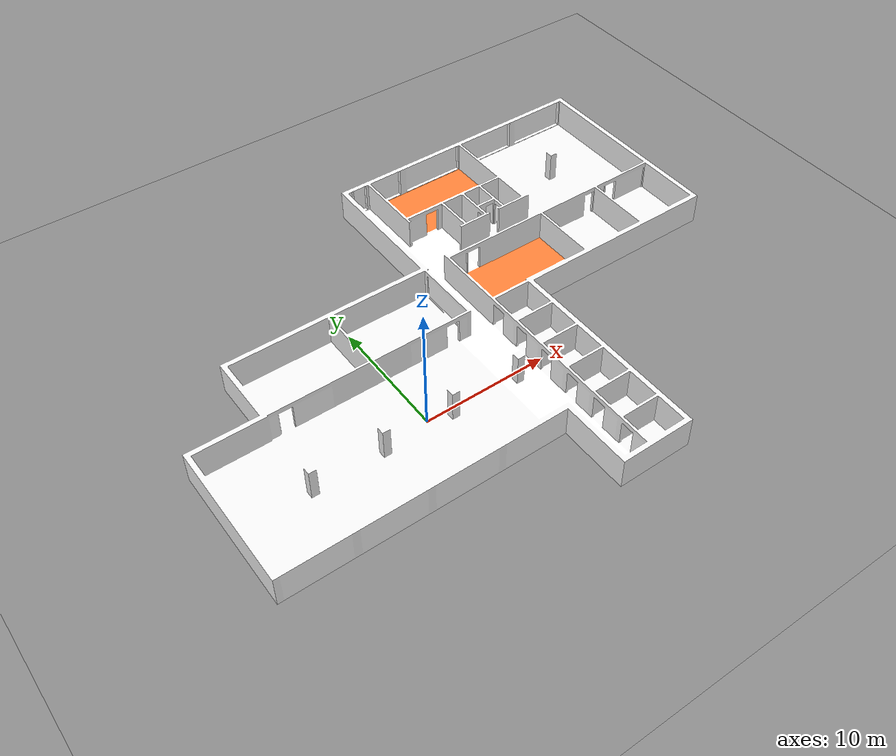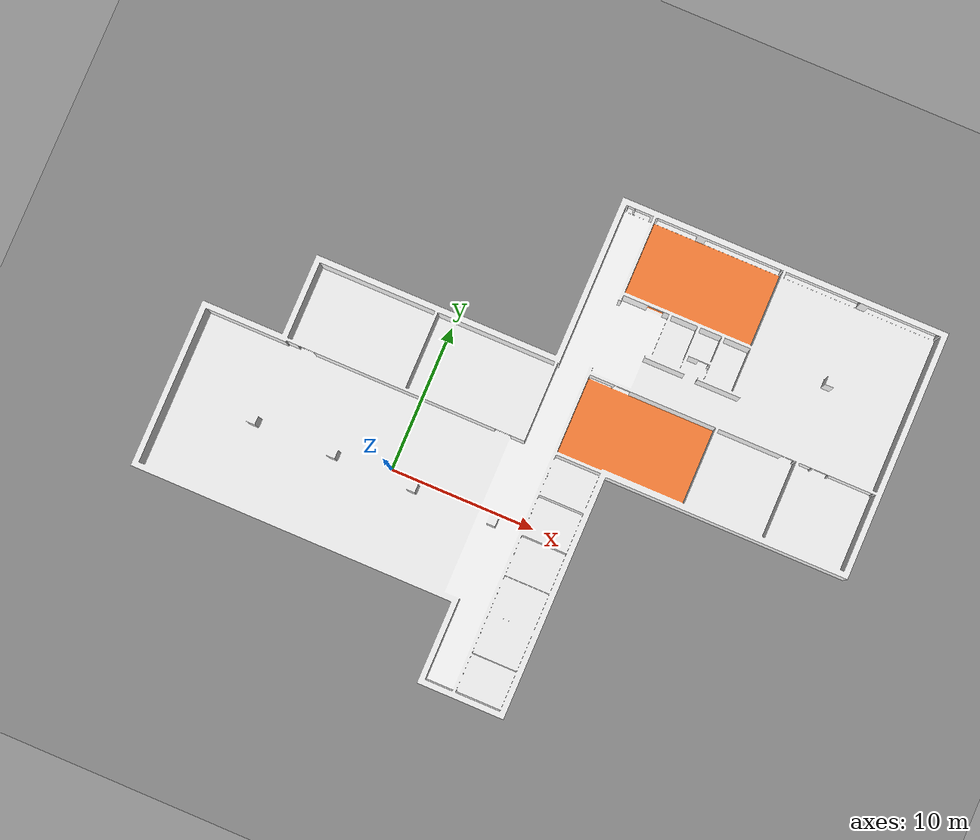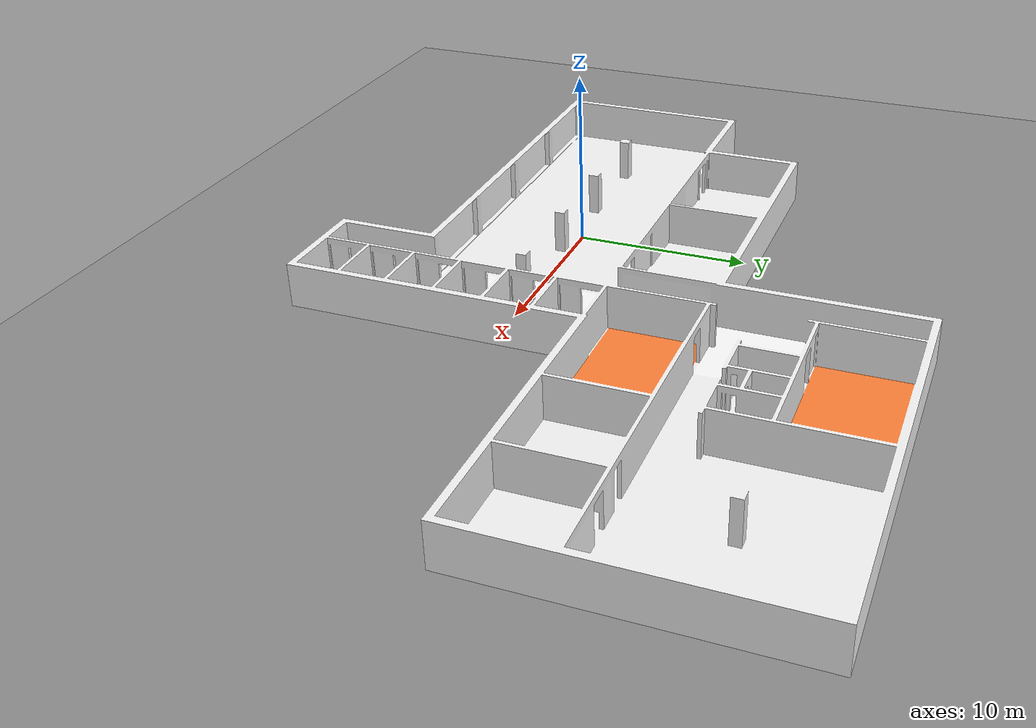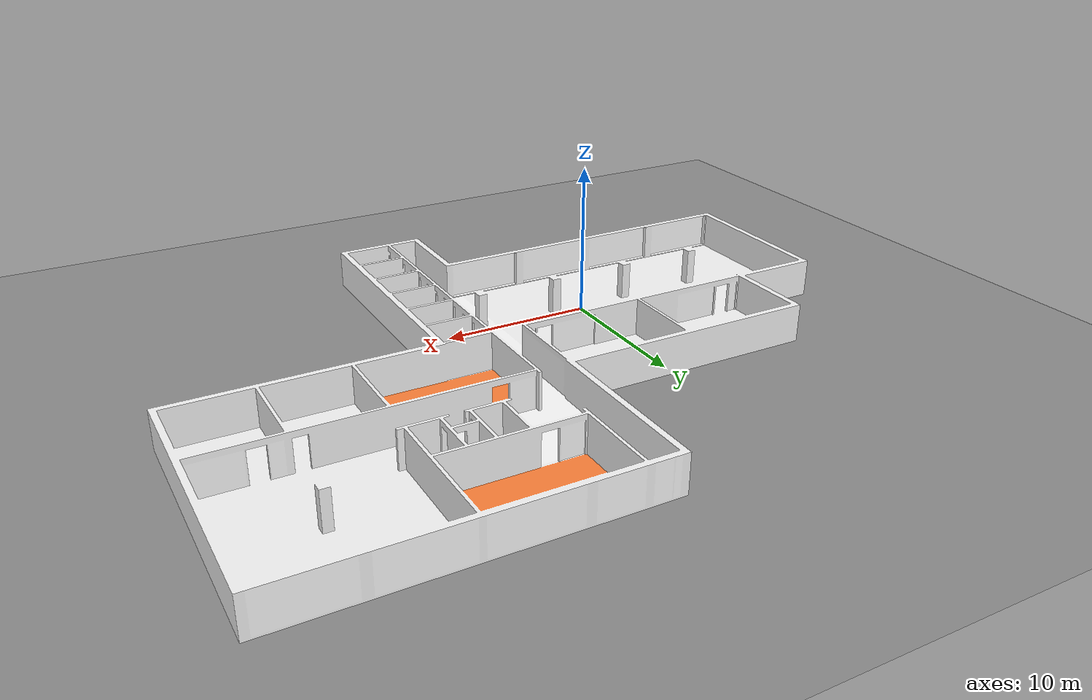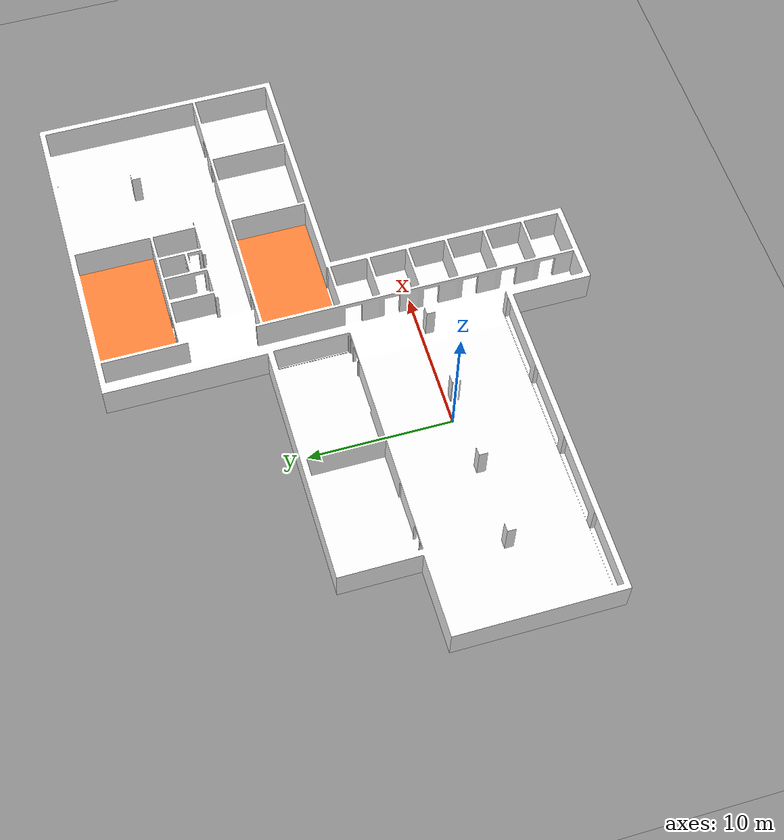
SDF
<sdf version="1.9">

  <world name="default">

    <!-- GAZEBO SYSTEM PLUGINS                                     -->

    <plugin
      name="gz::sim::systems::Physics"
      filename="gz-sim-physics-system"/>

    <plugin
      name="gz::sim::systems::UserCommands"
      filename="gz-sim-user-commands-system"/>

    <plugin
      name="gz::sim::systems::SceneBroadcaster"
      filename="gz-sim-scene-broadcaster-system"/>

    <plugin
      name="gz::sim::systems::Sensors"
      filename="gz-sim-sensors-system">

      <render_engine>ogre2</render_engine>

    </plugin>

    <plugin
      name="gz::sim::systems::Imu"
      filename="gz-sim-imu-system"/>

    <!-- WORLD PHYSICS                                             -->

    <gravity>0 0 -9.8</gravity>

    <magnetic_field>
      6.0e-06 2.3e-05 -4.2e-05
    </magnetic_field>

    <atmosphere type="adiabatic"/>

    <physics type="ode">

      <max_step_size>0.001</max_step_size>

      <real_time_factor>1</real_time_factor>

      <real_time_update_rate>1000</real_time_update_rate>

    </physics>

    <!-- SCENE                                                     -->

    <scene>

      <ambient>
        0.4 0.4 0.4 1
      </ambient>

      <background>
        0.7 0.7 0.7 1
      </background>

      <shadows>true</shadows>

    </scene>

    <!-- AUDIO                                                      -->

    <audio>

      <device>default</device>

    </audio>

    <!-- WIND                                                       -->

    <wind/>

    <!-- EARTH COORDINATES                                          -->

    <spherical_coordinates>

      <surface_model>EARTH_WGS84</surface_model>

      <latitude_deg>0</latitude_deg>

      <longitude_deg>0</longitude_deg>

      <elevation>0</elevation>

      <heading_deg>0</heading_deg>

    </spherical_coordinates>

    <!-- GROUND PLANE                                              -->
    <!-- Ground remains centered at (0,0).                         -->
    <!-- Size = 100 x 100 m                                        -->
    <!-- CRTA is placed separately at (-15,-6).                    -->

    <model name="ground_plane">

      <static>true</static>

      <pose>0 0 0 0 0 0</pose>

      <link name="link">

        <!-- GROUND COLLISION                                      -->

        <collision name="collision">

          <geometry>

            <plane>

              <normal>0 0 1</normal>

              <size>100 100</size>

            </plane>

          </geometry>

          <surface>

            <contact>

              <collide_bitmask>65535</collide_bitmask>

              <ode/>

            </contact>

            <friction>

              <ode>

                <mu>100</mu>

                <mu2>50</mu2>

              </ode>

              <torsional>

                <ode/>

              </torsional>

            </friction>

            <bounce/>

          </surface>

          <max_contacts>10</max_contacts>

        </collision>

        <!-- GROUND VISUAL                                         -->

        <visual name="visual">

          <cast_shadows>false</cast_shadows>

          <geometry>

            <plane>

              <normal>0 0 1</normal>

              <size>100 100</size>

            </plane>

          </geometry>

          <!-- Direct material instead of gazebo.material -->
          <material>

            <ambient>
              0.35 0.35 0.35 1
            </ambient>

            <diffuse>
              0.55 0.55 0.55 1
            </diffuse>

            <specular>
              0.1 0.1 0.1 1
            </specular>

          </material>

        </visual>

        <self_collide>false</self_collide>

        <enable_wind>false</enable_wind>

        <kinematic>false</kinematic>

        <pose>0 0 0 0 0 0</pose>

        <inertial>

          <pose>0 0 0 0 0 0</pose>

          <mass>1</mass>

          <inertia>

            <ixx>1</ixx>

            <ixy>0</ixy>

            <ixz>0</ixz>

            <iyy>1</iyy>

            <iyz>0</iyz>

            <izz>1</izz>

          </inertia>

        </inertial>

      </link>

    </model>

    <!-- CRTA WORLD                                                -->
    <!-- Entire CRTA model translated by:                          -->
    <!-- This moves BOTH visual and collision together.            -->

    <model name="CRTA_v4">

      <static>true</static>

      <pose>-15 -6 0 0 0 0</pose>

      <allow_auto_disable>true</allow_auto_disable>

      <self_collide>false</self_collide>

      <link name="link_0">

        <!-- INERTIAL                                               -->

        <inertial>

          <mass>1</mass>

          <inertia>

            <ixx>0.166667</ixx>

            <ixy>0</ixy>

            <ixz>0</ixz>

            <iyy>0.166667</iyy>

            <iyz>0</iyz>

            <izz>0.166667</izz>

          </inertia>

          <pose>0 0 0 0 0 0</pose>

        </inertial>

        <!-- CRTA VISUAL                                            -->

        <visual name="visual">

          <pose>0 0 0 0 0 0</pose>

          <geometry>

            <mesh>

              <uri>
                file:///home/tona/astro_ws_pas/worlds/02 CRTA_simplified/crta_pojednostavljeno/CRTA_v4/mesh/CRTA_mesh.dae
              </uri>

              <scale>1 1 1</scale>

            </mesh>

          </geometry>

          <transparency>0</transparency>

          <cast_shadows>true</cast_shadows>

        </visual>

        <!-- CRTA COLLISION                                         -->

        <collision name="collision">

          <laser_retro>0</laser_retro>

          <max_contacts>10</max_contacts>

          <pose>0 0 0 0 0 0</pose>

          <geometry>

            <mesh>

              <uri>
                file:///home/tona/astro_ws_pas/worlds/02 CRTA_simplified/crta_pojednostavljeno/CRTA_v4/mesh/CRTA_mesh.dae
              </uri>

              <scale>1 1 1</scale>

            </mesh>

          </geometry>

          <!-- FRICTION                                             -->

          <surface>

            <friction>

              <ode>

                <mu>1</mu>

                <mu2>1</mu2>

                <fdir1>0 0 0</fdir1>

                <slip1>0</slip1>

                <slip2>0</slip2>

              </ode>

              <torsional>

                <coefficient>1</coefficient>

                <patch_radius>0</patch_radius>

                <surface_radius>0</surface_radius>

                <use_patch_radius>true</use_patch_radius>

                <ode>

                  <slip>0</slip>

                </ode>

              </torsional>

            </friction>

            <!-- BOUNCE                                              -->

            <bounce>

              <restitution_coefficient>0</restitution_coefficient>

              <threshold>1000000</threshold>

            </bounce>

            <!-- CONTACT                                             -->

            <contact>

              <collide_without_contact>false</collide_without_contact>

              <collide_without_contact_bitmask>1</collide_without_contact_bitmask>

              <collide_bitmask>1</collide_bitmask>

              <ode>

                <soft_cfm>0</soft_cfm>

                <soft_erp>0.2</soft_erp>

                <kp>10000000000000</kp>

                <kd>1</kd>

                <max_vel>0.01</max_vel>

                <min_depth>0</min_depth>

              </ode>

              <bullet>

                <split_impulse>true</split_impulse>

                <split_impulse_penetration_threshold>-0.01</split_impulse_penetration_threshold>

                <soft_cfm>0</soft_cfm>

                <soft_erp>0.2</soft_erp>

                <kp>10000000000000</kp>

                <kd>1</kd>

              </bullet>

            </contact>

          </surface>

        </collision>

        <self_collide>false</self_collide>

        <enable_wind>false</enable_wind>

        <kinematic>false</kinematic>

      </link>

    </model>

    <!-- SUN                                                        -->

    <light name="sun" type="directional">

      <pose>0 0 10 0 0 0</pose>

      <cast_shadows>true</cast_shadows>

      <intensity>1</intensity>

      <direction>
        -0.5 0.1 -0.9
      </direction>

      <diffuse>
        0.8 0.8 0.8 1
      </diffuse>

      <specular>
        0.2 0.2 0.2 1
      </specular>

      <attenuation>

        <range>1000</range>

        <linear>0.01</linear>

        <constant>0.9</constant>

        <quadratic>0.001</quadratic>

      </attenuation>

      <spot>

        <inner_angle>0</inner_angle>

        <outer_angle>0</outer_angle>

        <falloff>0</falloff>

      </spot>

    </light>

  </world>

</sdf>
